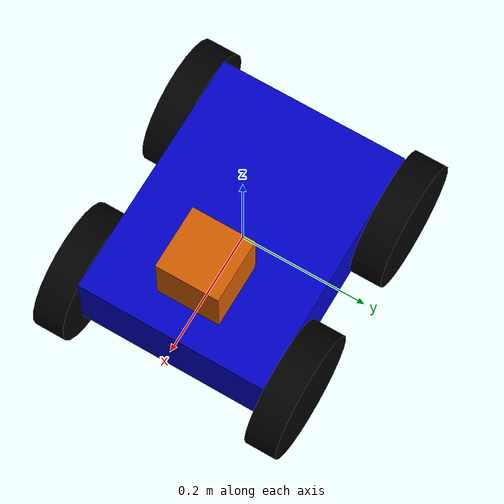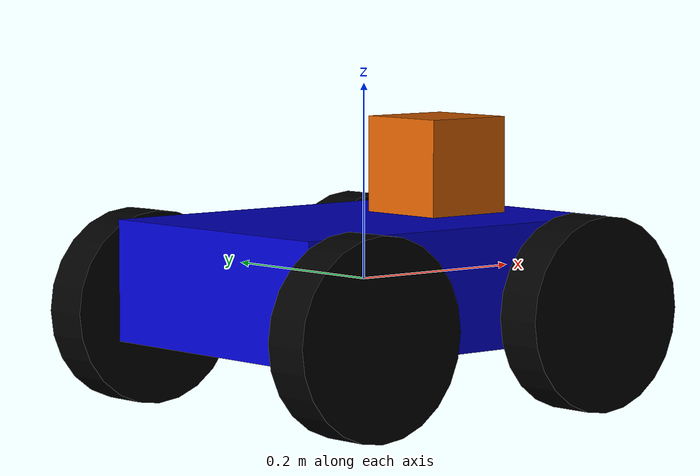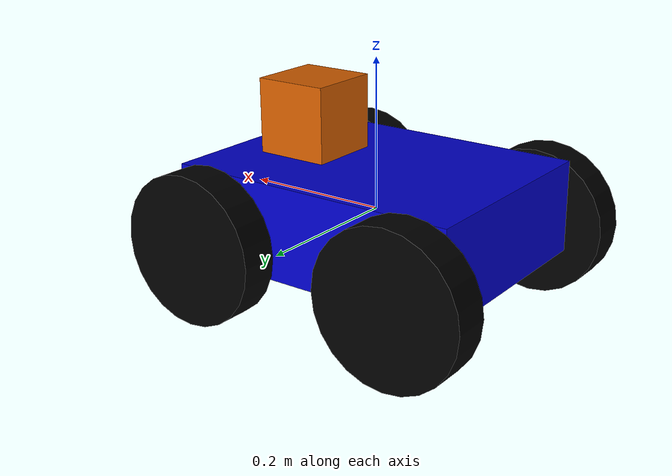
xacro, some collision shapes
<?xml version="1.0"?>
<robot xmlns:xacro="http://www.ros.org/wiki/xacro" name="robot">
	<property name="PI" value="3.1415926535897931" />
	<xacro:property name="rob_name" value="robot" />

	<xacro:property name="base_mass" value="7.0"/>
	<xacro:property name="base_hight" value="0.125"/>
	<xacro:property name="base_width" value="0.3"/>
	<xacro:property name="base_length" value="0.4"/>
	<xacro:property name="base_Ix" value="${base_mass*(base_hight*base_hight+base_width*base_width)/12}"/>
	<xacro:property name="base_Iy" value="${base_mass*(base_length*base_length+base_hight*base_hight)/12}"/>
	<xacro:property name="base_Iz" value="${base_mass*(base_length*base_length+base_width*base_width)/12}"/>

	<xacro:property name="wheel_radius" value="0.1"/>
	<xacro:property name="wheel_length" value="0.05"/>
	<xacro:property name="wheel_mass" value="0.5"/>
	<xacro:property name="wheel_Iz" value="${wheel_mass*wheel_radius*wheel_radius/2}"/>
	<xacro:property name="wheel_Ix" value="${wheel_mass*(3*wheel_radius*wheel_radius+wheel_length*wheel_length)/12}"/>

	<!-- base of robot-->
	<xacro:macro name="base_link">
		<link name="base_link">
			<visual>
				<geometry>
					<box size="${base_length} ${base_width} ${base_hight}"/>
				</geometry>
				<material name="blue">
					<color rgba="0 0 .8 1"/>
				</material>
			</visual>
			<collision>
				<geometry>
					<box size="${base_length} ${base_width} ${base_hight}"/>
				</geometry>
			</collision>
			<inertial>
				<mass value="${base_mass}"/>
				<inertia ixx="${wheel_Ix}" ixy="0.0" ixz="0.0" iyy="${base_Iy}" iyz="0.0" izz="${base_Iz}"/>
			</inertial>
		</link>
		<gazebo reference="base_link">
			<turnGravityOff>false</turnGravityOff>
		</gazebo>

	</xacro:macro>
	<xacro:base_link/>

	<!--wheels-->

	<xacro:macro name="wheel" params="prefix xyz_offsets lr">
		<link name="${prefix}_wheel">
			<visual>
				<origin xyz="0 0 0" rpy="${PI/2} 0 0" />
				<geometry>
					<cylinder length="${wheel_length}" radius="${wheel_radius}"/>
				</geometry>
				<material name="black">
					<color rgba="0 0 0 1"/>
				</material>
			</visual>
			<collision>
				<origin xyz="0 0 0" rpy="${PI/2} 0 0" />
				<geometry>
					<cylinder length="${wheel_length}" radius="${wheel_radius}"/>
				</geometry>
			</collision>
			<inertial>
				<mass value="${wheel_mass}"/>
				<inertia ixx="${wheel_Ix}" ixy="0.0" ixz="0.0" iyy="${wheel_Ix}" iyz="0.0" izz="${wheel_Iz}"/>
			</inertial>
		</link>

		<joint name="${prefix}_wheel_joint" type="continuous">
			<axis xyz="0 1 0"/>
			<parent link="base_link"/>
			<child link="${prefix}_wheel"/>
			<origin rpy="0 0 0" xyz="${xyz_offsets}"/>
			<limit effort="100" velocity="100"/>
			<joint_properties damping="0.0" friction="0.0"/>
		</joint>

		<gazebo reference="${prefix}_wheel">
 			<mu1 value="1" />
  			<mu2 value="1" />
  			<fdir1 value="0 0 1"/>
  			<material>Gazebo/Grey</material>
  			<turnGravityOff>false</turnGravityOff>
		</gazebo>
	</xacro:macro>

	<xacro:property name="wheel_x_sep" value="${base_length/4+0.05}"/>

	<xacro:wheel prefix="right_front" xyz_offsets="${wheel_x_sep} -${(base_width+wheel_length)/2} -${base_hight/4}" lr="1"/>

	<xacro:wheel prefix="right_rear" xyz_offsets="-${wheel_x_sep} -${(base_width+wheel_length)/2} -${base_hight/4}" lr="1"/>

	<xacro:wheel prefix="left_front" xyz_offsets="${wheel_x_sep} ${(base_width+wheel_length)/2} -${base_hight/4}" lr="0"/>

	<xacro:wheel prefix="left_rear" xyz_offsets="-${wheel_x_sep} ${(base_width+wheel_length)/2} -${base_hight/4}" lr="0"/>

	<gazebo reference="base_link">
		<material>Gazebo/Blue</material>
	</gazebo>
	<gazebo reference="right_front_wheel">
		<material>Gazebo/Black</material>
	</gazebo>
	<gazebo reference="right_rear_wheel">
		<material>Gazebo/Black</material>
	</gazebo>
	<gazebo reference="left_front_wheel">
		<material>Gazebo/Black</material>
	</gazebo>
	<gazebo reference="left_rear_wheel">
		<material>Gazebo/Black</material>
	</gazebo>

	<!-- Hokuyo Laser -->
	<joint name="hokuyo_joint" type="fixed">
		<origin xyz="${base_length/2 - base_length/4} 0 ${base_hight/2 + 0.05}" rpy="0 0 0"/>
		<parent link="base_link"/>
		<child link="hokuyo_link"/>
	</joint>

	<link name="hokuyo_link">
		<collision>
			<geometry>
				<box size="0.1 0.1 0.1"/>
			</geometry>
		</collision>

		<visual>
			<geometry>
				<mesh filename="package://robot_description/meshes/hokuyo.dae"/>
			</geometry>
		</visual>

		<inertial>
			<mass value="1e-5" />
			<inertia ixx="1e-6" ixy="0" ixz="0" iyy="1e-6" iyz="0" izz="1e-6" />
		</inertial>
	</link>

	<gazebo reference="hokuyo_link">
		<sensor name="head_hokuyo_sensor" type="ray">
			<visualize>false</visualize>
			<update_rate>40</update_rate>
			<ray>
				<scan>
					<horizontal>
						<samples>720</samples>
						<resolution>1</resolution>
						<min_angle>-1.570796</min_angle>
						<max_angle>1.570796</max_angle>
					</horizontal>
				</scan>
				<range>
					<min>0.10</min>
					<max>30.0</max>
					<resolution>0.01</resolution>
				</range>
				<noise>
					<type>gaussian</type>
					<mean>0.0</mean>
					<stddev>0.01</stddev>
				</noise>
			</ray>
			<plugin filename="libgazebo_ros_laser.so" name="gazebo_ros_head_hokuyo_controller">
				<topicName>/gazebo/laser_scan</topicName>
				<frameName>hokuyo_link</frameName>
			</plugin>
		</sensor>
		<turnGravityOff>false</turnGravityOff>
	</gazebo>

	<!--diff drive controller-->
	<gazebo>
		<plugin name="robot_controller" filename="libdiff_drive_gazebo_plugin.so">
			<cmd_vel_topic_name>cmd_vel</cmd_vel_topic_name>
			<odom_topic_name>odom</odom_topic_name>
			<joint_states_topic_name>joint_states</joint_states_topic_name>
			<left_wheel_0>left_front_wheel_joint</left_wheel_0>
			<left_wheel_1>left_rear_wheel_joint</left_wheel_1>
			<right_wheel_2>right_front_wheel_joint</right_wheel_2>
			<right_wheel_3>right_rear_wheel_joint</right_wheel_3>
			<wheel_separation>${base_width + wheel_length}</wheel_separation>
			<wheel_radius>0.1</wheel_radius>
			<torque>10.0</torque>
			<num_joints>4</num_joints>

		</plugin>
	</gazebo>

	<joint name="imu_joint" type="fixed">
    	<axis xyz="0 0 0"/>
    	<origin xyz="0.0 0.0 0.0"/>
    	<parent link="base_link"/>
    	<child link="imu_link"/>
 	</joint>

 	<link name="imu_link">
 		<inertial>
 			<mass value="0.001"/>
 			<origin rpy="0.0 0.0 0.0" xyz="0.0 0.0 0.0"/>
 			<inertia ixx="0.0001" ixy="0" ixz="0" iyy="0.000001" iyz="0" izz="0.0001"/>
 		</inertial>
 		<collision>
 			<origin rpy="0 0 0" xyz="0 0 0"/>
 			<geometry>
 				<box size=".001 .001 .001"/>
 			</geometry>
 		</collision>
 	</link>

 	<gazebo>
 		<plugin filename="libgazebo_ros_imu.so" name="imu_en_ros">
 			<alwaysOn>true</alwaysOn>
 			<updateRate>100.0</updateRate>
 			<bodyName>imu_link</bodyName>
 			<topicName>imu_data</topicName>
 			<gaussianNoise>2.89e-08</gaussianNoise>
 			<xyzOffset>0.0 0.0 0.0</xyzOffset>
 			<rpyOffset>0.0 0.0 0.0</rpyOffset>
 		</plugin>
 		<turnGravityOff>false</turnGravityOff>
 	</gazebo>

</robot>
